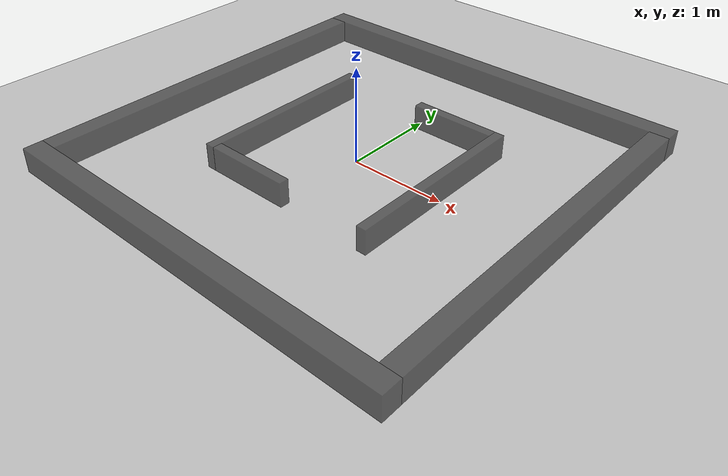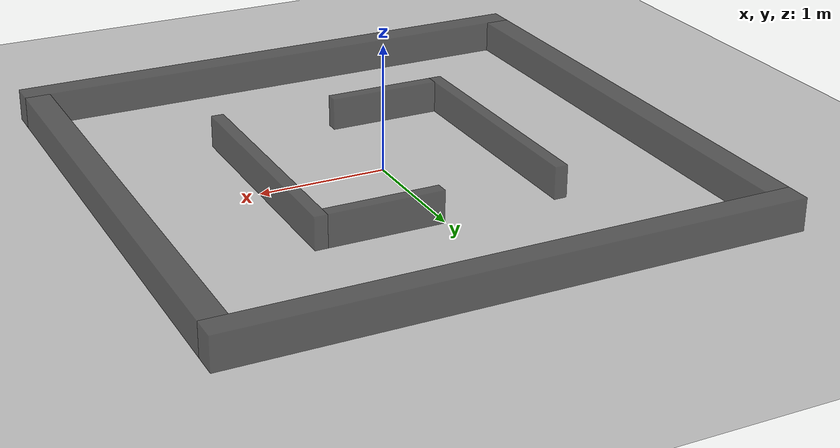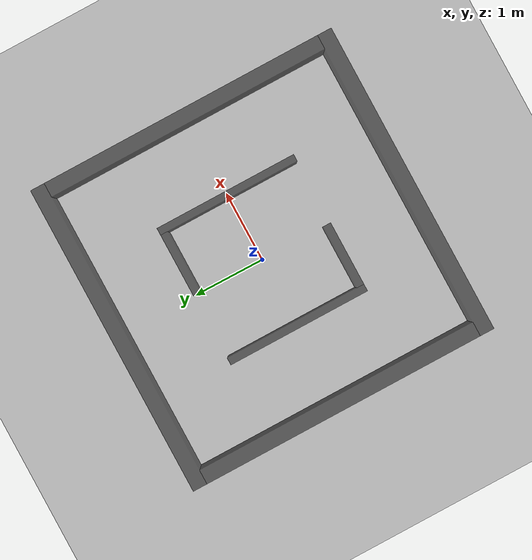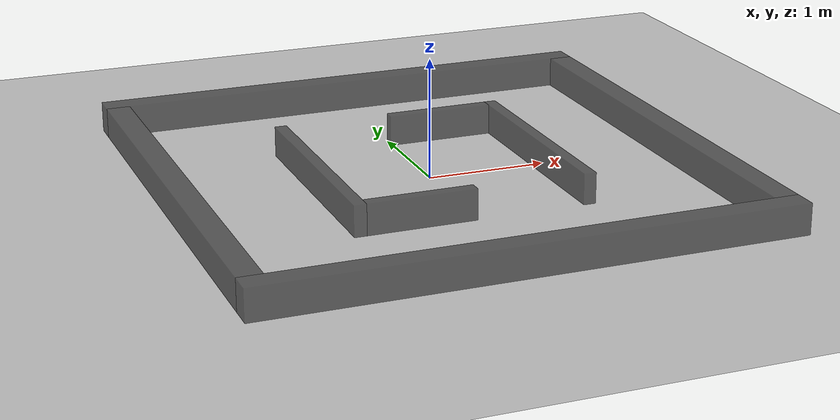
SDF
<!-- Two large Ls-->
<?xml version="1.0" ?>
<sdf version="1.6">
  <world name="minimal_world">
    <include>
      <uri>model://ground_plane</uri>
    </include>
    <include>
      <uri>model://sun</uri>
    </include>

   <!-- Back Wall -->
   <model name="back_wall">
    <static>true</static>
     <pose>0 2.1 0 0 0 0</pose>
     <link name="back_wall">
       <collision name="collision">
         <geometry>
           <box>
             <size>4.4 0.2 0.5</size>
           </box>
         </geometry>
       </collision>
       <visual name="visual">
         <geometry>
           <box>
             <size>4.4 0.2 0.5</size>
           </box>
         </geometry>
         <material>
           <ambient>0.3 0.3 0.3 0.5</ambient>
           <diffuse>0.3 0.3 0.3 0.8</diffuse>
         </material>
       </visual>
     </link>
   </model>

   <!-- Front Wall -->
   <model name="front_wall">
   <static>true</static>
     <pose>0 -2.1 0 0 0 0</pose>
     <link name="front_wall">
       <collision name="collision">
         <geometry>
           <box>
             <size>4.4 0.2 0.5</size>
           </box>
         </geometry>
       </collision>
       <visual name="visual">
         <geometry>
           <box>
             <size>4.4 0.2 0.5</size>
           </box>
         </geometry>
         <material>
           <ambient>0.3 0.3 0.3 0.5</ambient>
           <diffuse>0.3 0.3 0.3 0.8</diffuse>
         </material>
       </visual>
     </link>
   </model>

   <!-- Left Wall -->
   <model name="left_wall">
   <static>true</static>
     <pose>-2.1 0 0 0 0 0</pose>
     <link name="left_wall">
       <collision name="collision">
         <geometry>
           <box>
             <size>0.2 4 0.5</size>
           </box>
         </geometry>
       </collision>
       <visual name="visual">
         <geometry>
           <box>
             <size>0.2 4 0.5</size>
           </box>
         </geometry>
         <material>
           <ambient>0.3 0.3 0.3 0.5</ambient>
           <diffuse>0.3 0.3 0.3 0.8</diffuse>
         </material>
       </visual>
     </link>
   </model>

   <!-- Right Wall -->
   <model name="right_wall">
   <static>true</static>
     <pose>2.1 0 0 0 0 0</pose>
     <link name="right_wall">
       <collision name="collision">
         <geometry>
           <box>
             <size>0.2 4 0.5</size>
           </box>
         </geometry>
       </collision>
       <visual name="visual">
         <geometry>
           <box>
             <size>0.2 4 0.5</size>
           </box>
         </geometry>
         <material>
           <ambient>0.3 0.3 0.3 0.5</ambient>
           <diffuse>0.3 0.3 0.3 0.8</diffuse>
         </material>
       </visual>
     </link>
   </model>

   <!-- Obstacles -->
   <!-- Left L-->
   <model name="left_long_side">
   <static>true</static>
     <pose>-0.95 0 0 0 0 0</pose>
     <link name="left_long_side">
       <collision name="collision">
         <geometry>
           <box>
             <size>0.1 2 0.5</size>
           </box>
         </geometry>
       </collision>
       <visual name="visual">
         <geometry>
           <box>
             <size>0.1 2 0.5</size>
           </box>
         </geometry>
         <material>
           <ambient>0.3 0.3 0.3 0.5</ambient>
           <diffuse>0.3 0.3 0.3 0.8</diffuse>
         </material>
       </visual>
     </link>
   </model>

   <model name="left_short_side">
   <static>true</static>
     <pose>-0.45 -0.95 0 0 0 0</pose>
     <link name="left_short_side">
       <collision name="collision">
         <geometry>
           <box>
             <size>0.9 0.1 0.5</size>
           </box>
         </geometry>
       </collision>
       <visual name="visual">
         <geometry>
           <box>
             <size>0.9 0.1 0.5</size>
           </box>
         </geometry>
         <material>
           <ambient>0.3 0.3 0.3 0.5</ambient>
           <diffuse>0.3 0.3 0.3 0.8</diffuse>
         </material>
       </visual>
     </link>
   </model>

    <!-- Right L-->
   <model name="right_long_side">
   <static>true</static>
     <pose>0.95 0 0 0 0 0</pose>
     <link name="left_long_side">
       <collision name="collision">
         <geometry>
           <box>
             <size>0.1 2 0.5</size>
           </box>
         </geometry>
       </collision>
       <visual name="visual">
         <geometry>
           <box>
             <size>0.1 2 0.5</size>
           </box>
         </geometry>
         <material>
           <ambient>0.3 0.3 0.3 0.5</ambient>
           <diffuse>0.3 0.3 0.3 0.8</diffuse>
         </material>
       </visual>
     </link>
   </model>

   <model name="right_short_side">
   <static>true</static>
     <pose>0.45 0.95 0 0 0 0</pose>
     <link name="right_short_side">
       <collision name="collision">
         <geometry>
           <box>
             <size>0.9 0.1 0.5</size>
           </box>
         </geometry>
       </collision>
       <visual name="visual">
         <geometry>
           <box>
             <size>0.9 0.1 0.5</size>
           </box>
         </geometry>
         <material>
           <ambient>0.3 0.3 0.3 0.5</ambient>
           <diffuse>0.3 0.3 0.3 0.8</diffuse>
         </material>
       </visual>
     </link>
   </model>

   <!-- Configure the camera -->
    <gui fullscreen='0'>
      <camera name='user_camera'>
        <pose>0.0 -4.225 6 0 1 1.57</pose>
        <view_controller>orbit</view_controller>
        <projection_type>perspective</projection_type>
      </camera>
    </gui>
  </world>
</sdf>
